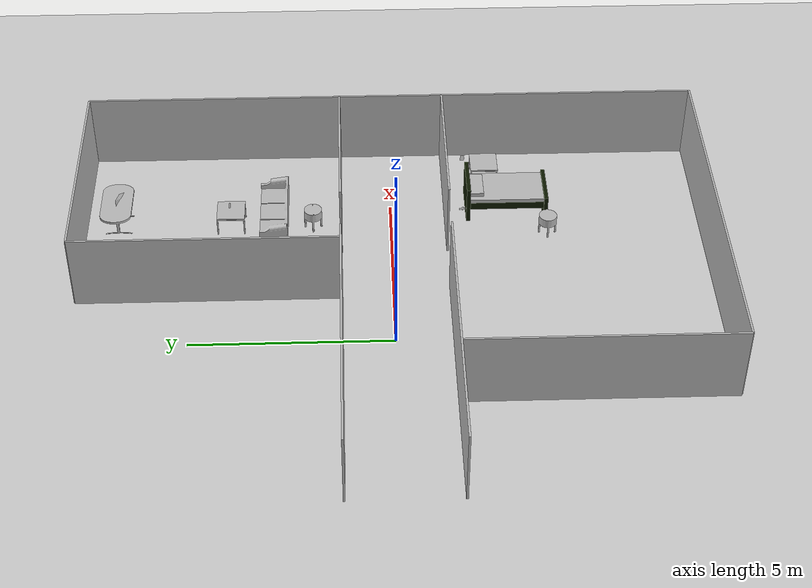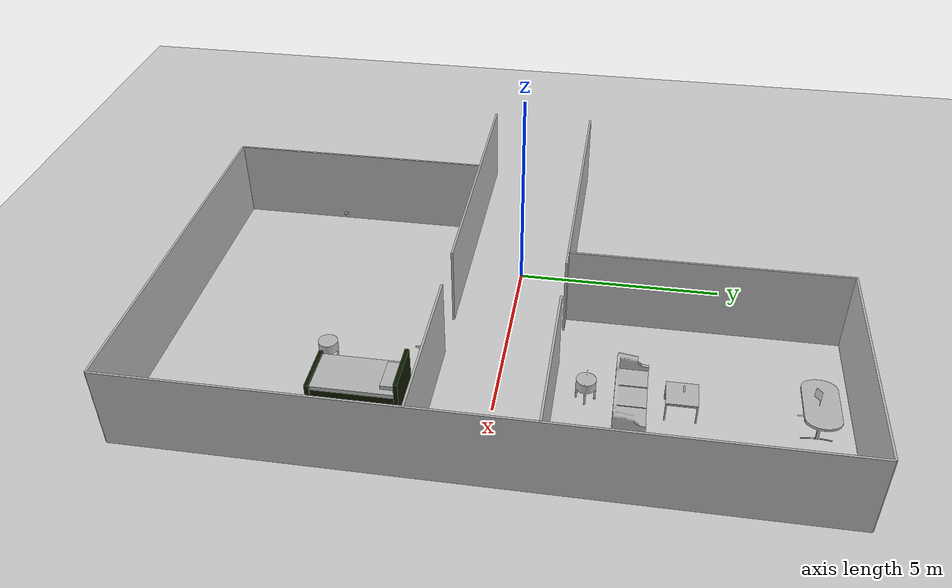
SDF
<sdf version="1.5">
 <world name="myworld">
  <include><uri>model://sun</uri></include>
  <include><uri>model://ground_plane</uri></include>
  <include><uri>model://hri_apartment</uri><pose>-5 0 1.5 0 3.1416 -1.5708</pose></include>
  <include><uri>model://hri_roundtable</uri><pose>4.3 2 0 0 0 0</pose></include>
  <include><uri>model://hri_couch</uri><pose>4.5 3 0 0 0 1.5708</pose></include>
  <include><uri>model://hri_coffeetable</uri><pose>4.4 4.1 0 0 0 0</pose></include>
  <include><uri>model://hri_dinnertable</uri><pose>4.5 7 0 0 0 1.5708</pose></include>
  <include><uri>model://hri_bed</uri><pose>5 -3 0 0 0 1.5708</pose></include>
  <include><uri>model://hri_roundtable</uri><pose>3.9 -4 0 0 0 0</pose></include>
  <include><uri>model://hri_coffeetable</uri><pose>6.2 -2.5 0 0 0 0</pose></include>
  <include><uri>model://hri_obj_laptop</uri><pose>4.5 7 0.9 0 0 2.8624</pose></include>
  <include><uri>model://hri_obj_glassescase</uri><pose>4.4 4.1 0.6 0 0 0</pose></include>
  <include><uri>model://hri_obj_fork</uri><pose>4.3 2 0.6 0 0 0</pose></include>
  <include><uri>model://hri_obj_monitor</uri><pose>6.2 -2 0.5 0 0 0</pose></include>
  <include><uri>model://hri_obj_statue</uri><pose>4 -1.9 0.6 0 0 0</pose></include>
  <include><uri>model://hri_obj_mug</uri><pose>-1.2 -5 0.6 0 0 0</pose></include>
 </world>
</sdf>
